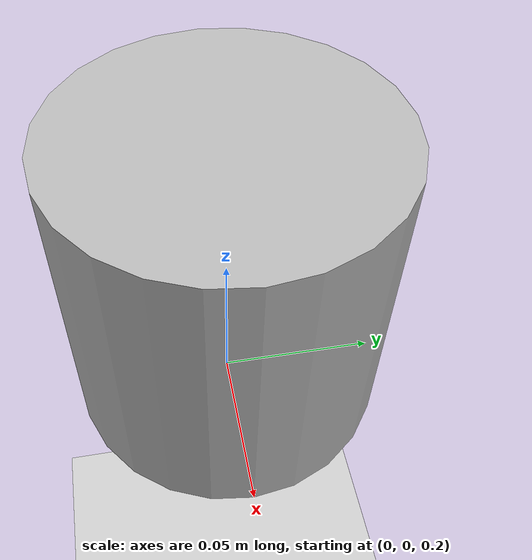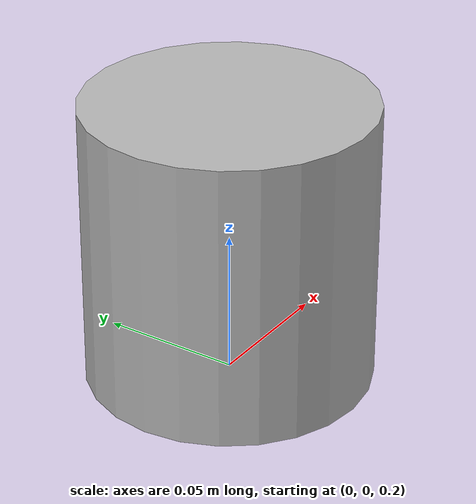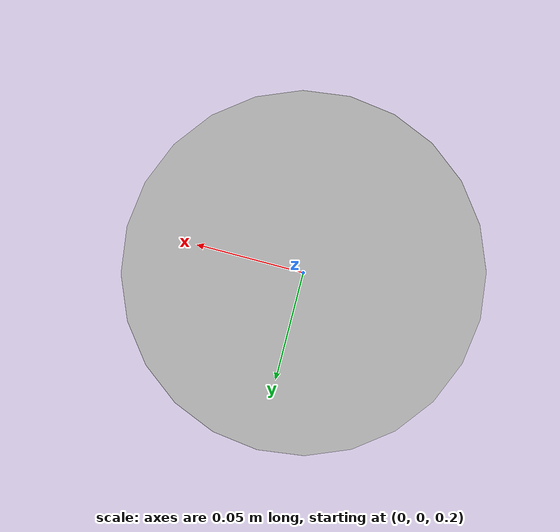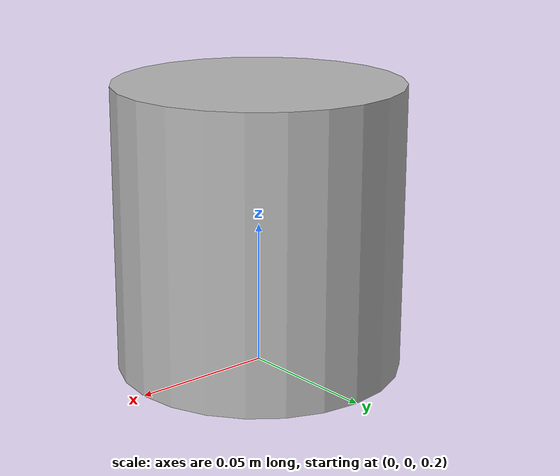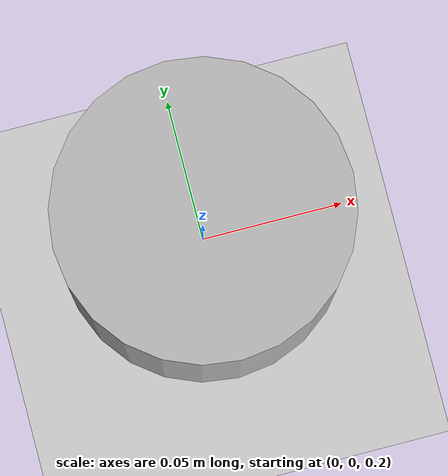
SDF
<?xml version="1.0" encoding="UTF-8" ?>
<sdf version='1.6'>
  <world name='default'>
    <include>
      <uri>model://ground_plane</uri>
    </include>
    <!-- A global light source -->
    <include>
      <uri>model://sun</uri>
    </include>
    <model name='light_model'>
      <static>1</static>
      <link name='cylinder'>
        <pose frame=''>0 0 0.25 0 -0 0</pose>
        <collision name='collision'>
          <geometry>
            <cylinder>
              <radius>0.05</radius>
              <length>0.1</length>
            </cylinder>
          </geometry>
        </collision>
        <visual name='visual'>
          <geometry>
            <cylinder>
              <radius>0.05</radius>
              <length>0.1</length>
            </cylinder>
          </geometry>
        </visual>
        <light name='light_source1' type='spot'>
          <pose frame=''>0.25 0 0.25 0 -0.7854 0</pose>
          <attenuation>
            <range>30</range>
            <linear>0.05</linear>
          </attenuation>
          <diffuse>1 0 0 1</diffuse>
          <specular>1 0 0 1</specular>
          <spot>
            <inner_angle>0.3</inner_angle>
            <outer_angle>0.35</outer_angle>
            <falloff>1</falloff>
          </spot>
          <direction>0 0 -1</direction>
        </light>
        <light name='light_source2' type='spot'>
          <pose frame=''>-0.25 0 0.25 0 0.7854 0</pose>
          <attenuation>
            <range>30</range>
            <linear>0.05</linear>
          </attenuation>
          <diffuse>0 1 0 1</diffuse>
          <specular>0 1 0 1</specular>
          <spot>
            <inner_angle>0.3</inner_angle>
            <outer_angle>0.35</outer_angle>
            <falloff>1</falloff>
          </spot>
          <direction>0 0 -1</direction>
        </light>
      </link>
      <plugin name='light_control' filename='libFlashLightPlugin.so'>
        <enable>true</enable>
        <light>
          <id>cylinder/light_source1</id>
          <duration>0.1</duration>
          <interval>0.4</interval>
        </light>
        <light>
          <id>cylinder/light_source2</id>
          <duration>0.05</duration>
          <interval>0.05</interval>
          <color>0.5 1 0.8</color>
        </light>
      </plugin>
    </model>
  </world>
</sdf>
